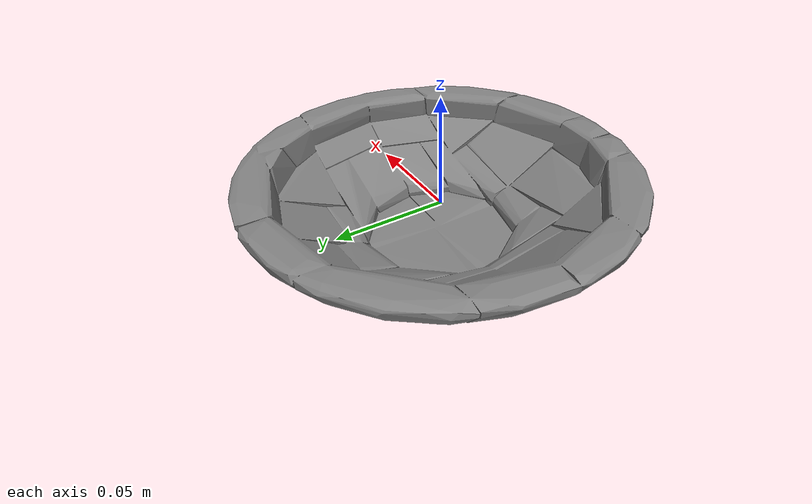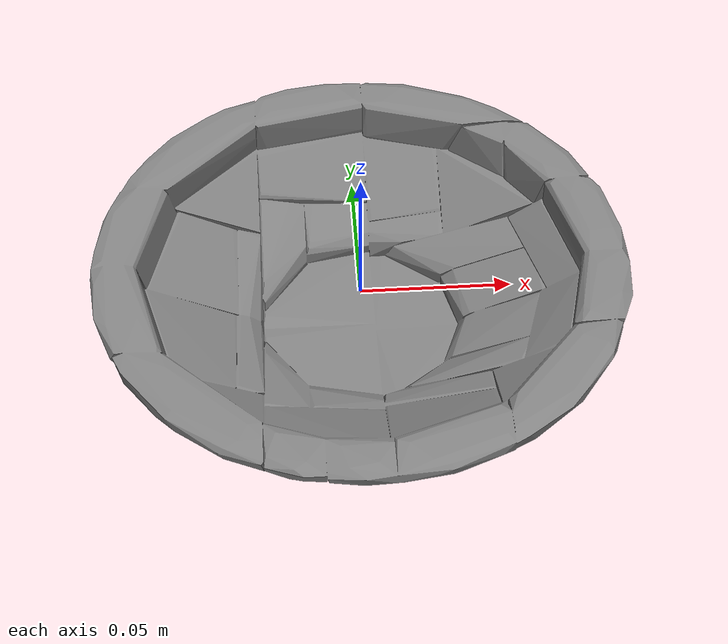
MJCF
<mujoco model="bowl102">
    <compiler angle="radian"/>
    <size njmax="500" nconmax="100"/>
    <asset>
        <mesh name="bowl102" file="bowl102.stl"/>
    </asset>
    <worldbody>
        <body>
            <body name="object">
                <geom pos="0 0 0" mesh="bowl102" type="mesh" solimp="0.998 0.998 0.001" solref="0.001 1"
                      density="600" friction="0.95 0.3 0.1" group="0" condim="4"/>
            </body>
            <site rgba="0 0 0 0" size="0.005" pos="0 0 -0.01" name="bottom_site"/>
            <site rgba="0 0 0 0" size="0.005" pos="0 0 0.01" name="top_site"/>
            <site rgba="0 0 0 0" size="0.005" pos="0.03 0.03 0" name="horizontal_radius_site"/>
    </body>
    </worldbody>
</mujoco>
